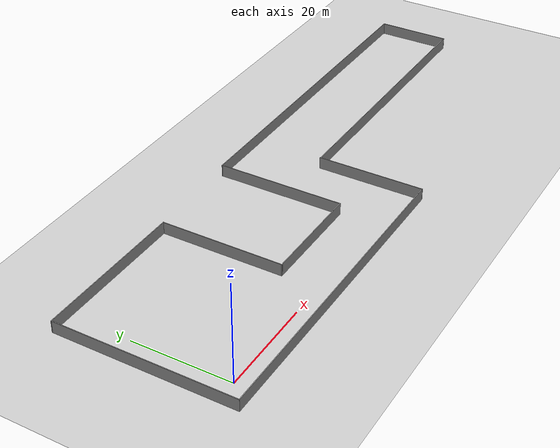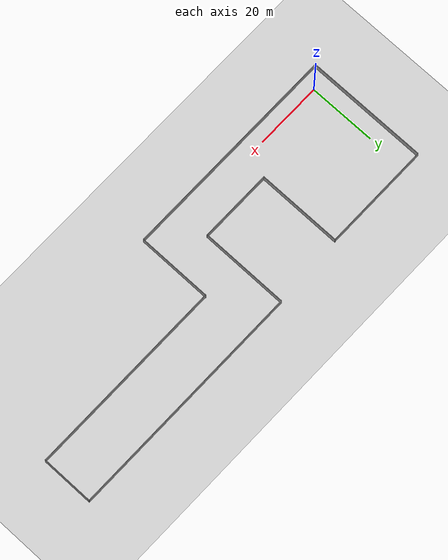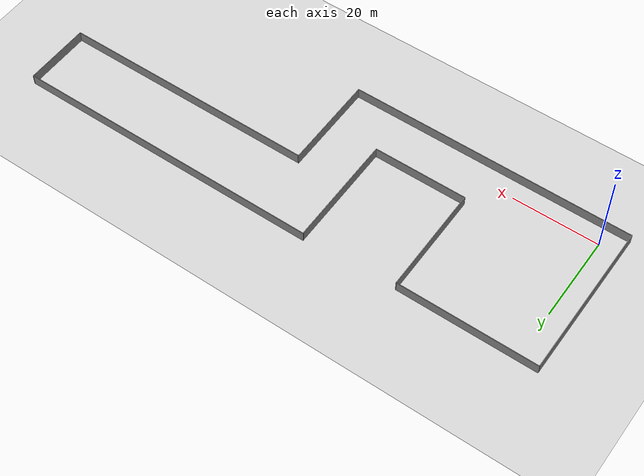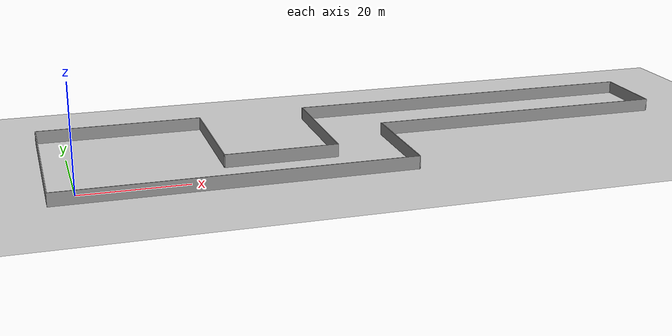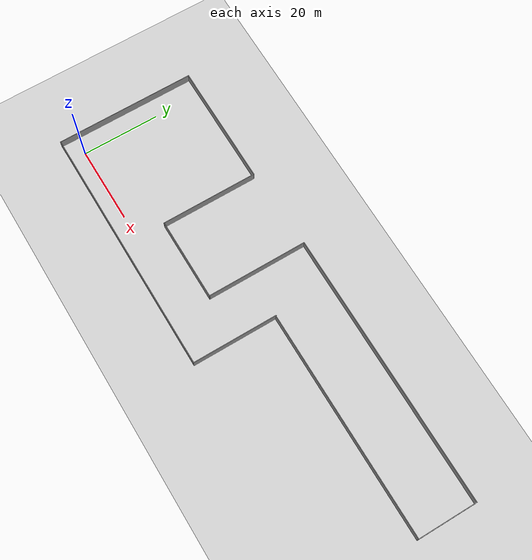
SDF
<sdf version="1.7">
 <world name="default">
  <light name="sun" type="directional">
   <pose>0 0 10 0 -0 0</pose>
   <diffuse>0.8 0.8 0.8 1</diffuse>
   <specular>0.2 0.2 0.2 1</specular>
   <attenuation>
    <range>1000</range>
    <constant>0.9</constant>
    <linear>0.01</linear>
    <quadratic>0.001</quadratic>
   </attenuation>
   <direction>-0.5 0.1 -0.9</direction>
   <spot><inner_angle>0</inner_angle><outer_angle>0</outer_angle><falloff>0</falloff></spot>
  </light>
  <model name="ground_plane">
   <static>1</static>
   <link name="link">
    <collision name="collision">
     <geometry><plane><normal>0 0 1</normal><size>100 100</size></plane></geometry>
     <surface><friction><ode><mu>100</mu><mu2>50</mu2></ode></friction></surface>
    </collision>
    <visual name="visual">
     <cast_shadows>0</cast_shadows>
     <geometry><plane><normal>0 0 1</normal><size>100 100</size></plane></geometry>
     <material>
      <script><uri>file://media/materials/scripts/gazebo.material</uri><name>Gazebo/Grey</name></script>
     </material>
    </visual>
   </link>
  </model>
  <gravity>0 0 -9.8</gravity>
  <magnetic_field>6e-06 2.3e-05 -4.2e-05</magnetic_field>
  <atmosphere type="adiabatic"/>
  <physics type="ode">
   <max_step_size>0.001</max_step_size>
   <real_time_factor>1</real_time_factor>
   <real_time_update_rate>1000</real_time_update_rate>
  </physics>
  <scene><ambient>0.4 0.4 0.4 1</ambient><background>0.7 0.7 0.7 1</background><shadows>1</shadows></scene>
  <spherical_coordinates>
   <surface_model>EARTH_WGS84</surface_model>
   <latitude_deg>0</latitude_deg>
   <longitude_deg>0</longitude_deg>
   <elevation>0</elevation>
   <heading_deg>0</heading_deg>
  </spherical_coordinates>
  <model name="warehouse_2">
   <pose>57.8765 14.638 0 0 -0 0</pose>
   <link name="Wall_10">
    <collision name="Wall_10_Collision">
     <geometry><box><size>66 0.15 2.5</size></box></geometry>
     <pose>0 0 1.25 0 -0 0</pose>
    </collision>
    <visual name="Wall_10_Visual">
     <pose>0 0 1.25 0 -0 0</pose>
     <geometry><box><size>66 0.15 2.5</size></box></geometry>
     <material>
      <script><uri>file://media/materials/scripts/gazebo.material</uri><name>Gazebo/Grey</name></script>
      <ambient>1 1 1 1</ambient>
     </material>
     <meta><layer>0</layer></meta>
    </visual>
    <pose>-29.725 -18.675 0 0 -0 0</pose>
   </link>
   <link name="Wall_11">
    <collision name="Wall_11_Collision">
     <geometry><box><size>22.25 0.15 2.5</size></box></geometry>
     <pose>0 0 1.25 0 -0 0</pose>
    </collision>
    <visual name="Wall_11_Visual">
     <pose>0 0 1.25 0 -0 0</pose>
     <geometry><box><size>22.25 0.15 2.5</size></box></geometry>
     <material>
      <script><uri>file://media/materials/scripts/gazebo.material</uri><name>Gazebo/Grey</name></script>
      <ambient>1 1 1 1</ambient>
     </material>
     <meta><layer>0</layer></meta>
    </visual>
    <pose>3.2 -7.625 0 0 -0 1.5708</pose>
   </link>
   <link name="Wall_2">
    <collision name="Wall_2_Collision">
     <geometry><box><size>59.5 0.15 2.5</size></box></geometry>
     <pose>0 0 1.25 0 -0 0</pose>
    </collision>
    <visual name="Wall_2_Visual">
     <pose>0 0 1.25 0 -0 0</pose>
     <geometry><box><size>59.5 0.15 2.5</size></box></geometry>
     <material>
      <script><uri>file://media/materials/scripts/gazebo.material</uri><name>Gazebo/Grey</name></script>
      <ambient>1 1 1 1</ambient>
     </material>
     <meta><layer>0</layer></meta>
    </visual>
    <pose>32.975 3.325 0 0 -0 0</pose>
   </link>
   <link name="Wall_3">
    <collision name="Wall_3_Collision">
     <geometry><box><size>15.5 0.15 2.5</size></box></geometry>
     <pose>0 0 1.25 0 -0 0</pose>
    </collision>
    <visual name="Wall_3_Visual">
     <pose>0 0 1.25 0 -0 0</pose>
     <geometry><box><size>15.5 0.15 2.5</size></box></geometry>
     <material>
      <script><uri>file://media/materials/scripts/gazebo.material</uri><name>Gazebo/Grey</name></script>
      <ambient>1 1 1 1</ambient>
     </material>
     <meta><layer>0</layer></meta>
    </visual>
    <pose>62.65 11 0 0 -0 1.5708</pose>
   </link>
   <link name="Wall_4">
    <collision name="Wall_4_Collision">
     <geometry><box><size>71.75 0.15 2.5</size></box></geometry>
     <pose>0 0 1.25 0 -0 0</pose>
    </collision>
    <visual name="Wall_4_Visual">
     <pose>0 0 1.25 0 -0 0</pose>
     <geometry><box><size>71.75 0.15 2.5</size></box></geometry>
     <material>
      <script><uri>file://media/materials/scripts/gazebo.material</uri><name>Gazebo/Grey</name></script>
      <ambient>1 1 1 1</ambient>
     </material>
     <meta><layer>0</layer></meta>
    </visual>
    <pose>26.85 18.675 0 0 -0 3.14159</pose>
   </link>
   <link name="Wall_5">
    <collision name="Wall_5_Collision">
     <geometry><box><size>26.25 0.15 2.5</size></box></geometry>
     <pose>0 0 1.25 0 -0 0</pose>
    </collision>
    <visual name="Wall_5_Visual">
     <pose>0 0 1.25 0 -0 0</pose>
     <geometry><box><size>26.25 0.15 2.5</size></box></geometry>
     <material>
      <script><uri>file://media/materials/scripts/gazebo.material</uri><name>Gazebo/Grey</name></script>
      <ambient>1 1 1 1</ambient>
     </material>
     <meta><layer>0</layer></meta>
    </visual>
    <pose>-8.95 5.625 0 0 -0 -1.5708</pose>
   </link>
   <link name="Wall_6">
    <collision name="Wall_6_Collision">
     <geometry><box><size>21.75 0.15 2.5</size></box></geometry>
     <pose>0 0 1.25 0 -0 0</pose>
    </collision>
    <visual name="Wall_6_Visual">
     <pose>0 0 1.25 0 -0 0</pose>
     <geometry><box><size>21.75 0.15 2.5</size></box></geometry>
     <material>
      <script><uri>file://media/materials/scripts/gazebo.material</uri><name>Gazebo/Grey</name></script>
      <ambient>1 1 1 1</ambient>
     </material>
     <meta><layer>0</layer></meta>
    </visual>
    <pose>-19.75 -7.425 0 0 -0 3.14159</pose>
   </link>
   <link name="Wall_7">
    <collision name="Wall_7_Collision">
     <geometry><box><size>25.25 0.15 2.5</size></box></geometry>
     <pose>0 0 1.25 0 -0 0</pose>
    </collision>
    <visual name="Wall_7_Visual">
     <pose>0 0 1.25 0 -0 0</pose>
     <geometry><box><size>25.25 0.15 2.5</size></box></geometry>
     <material>
      <script><uri>file://media/materials/scripts/gazebo.material</uri><name>Gazebo/Grey</name></script>
      <ambient>1 1 1 1</ambient>
     </material>
     <meta><layer>0</layer></meta>
    </visual>
    <pose>-30.55 5.125 0 0 -0 1.5708</pose>
   </link>
   <link name="Wall_8">
    <collision name="Wall_8_Collision">
     <geometry><box><size>32.25 0.15 2.5</size></box></geometry>
     <pose>0 0 1.25 0 -0 0</pose>
    </collision>
    <visual name="Wall_8_Visual">
     <pose>0 0 1.25 0 -0 0</pose>
     <geometry><box><size>32.25 0.15 2.5</size></box></geometry>
     <material>
      <script><uri>file://media/materials/scripts/gazebo.material</uri><name>Gazebo/Grey</name></script>
      <ambient>1 1 1 1</ambient>
     </material>
     <meta><layer>0</layer></meta>
    </visual>
    <pose>-46.6 17.675 0 0 -0 3.14159</pose>
   </link>
   <link name="Wall_9">
    <collision name="Wall_9_Collision">
     <geometry><box><size>36.5 0.15 2.5</size></box></geometry>
     <pose>0 0 1.25 0 -0 0</pose>
    </collision>
    <visual name="Wall_9_Visual">
     <pose>0 0 1.25 0 -0 0</pose>
     <geometry><box><size>36.5 0.15 2.5</size></box></geometry>
     <material>
      <script><uri>file://media/materials/scripts/gazebo.material</uri><name>Gazebo/Grey</name></script>
      <ambient>1 1 1 1</ambient>
     </material>
     <meta><layer>0</layer></meta>
    </visual>
    <pose>-62.65 -0.5 0 0 -0 -1.5708</pose>
   </link>
   <static>1</static>
  </model>
 </world>
</sdf>
